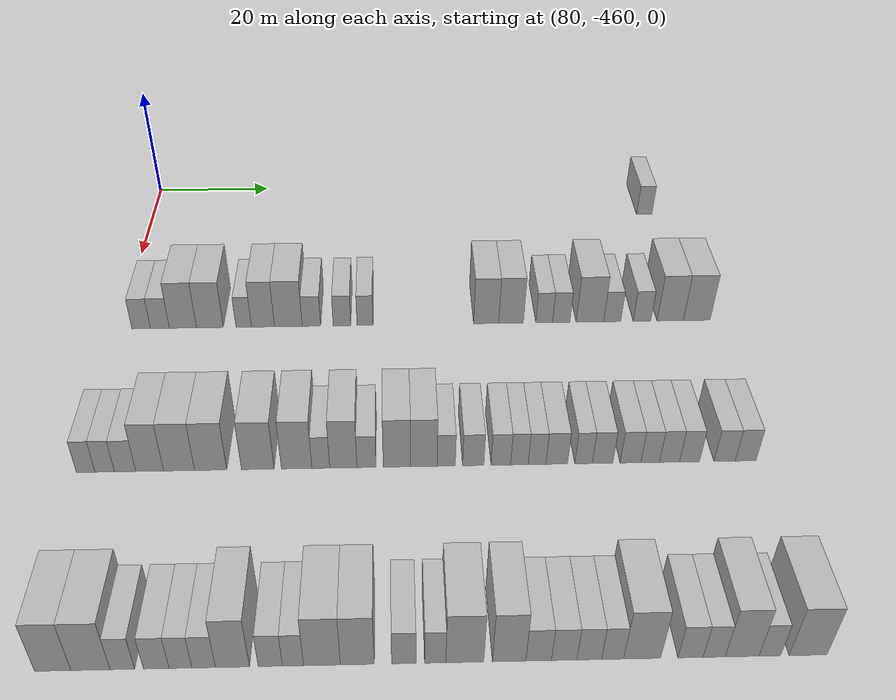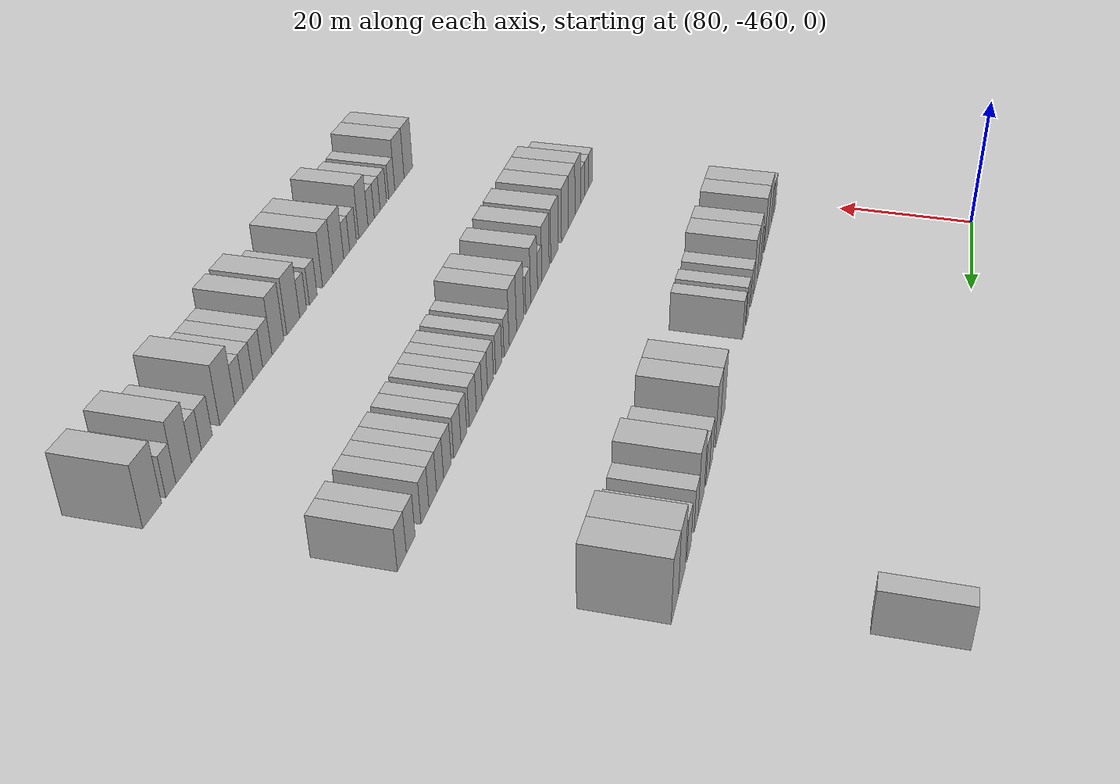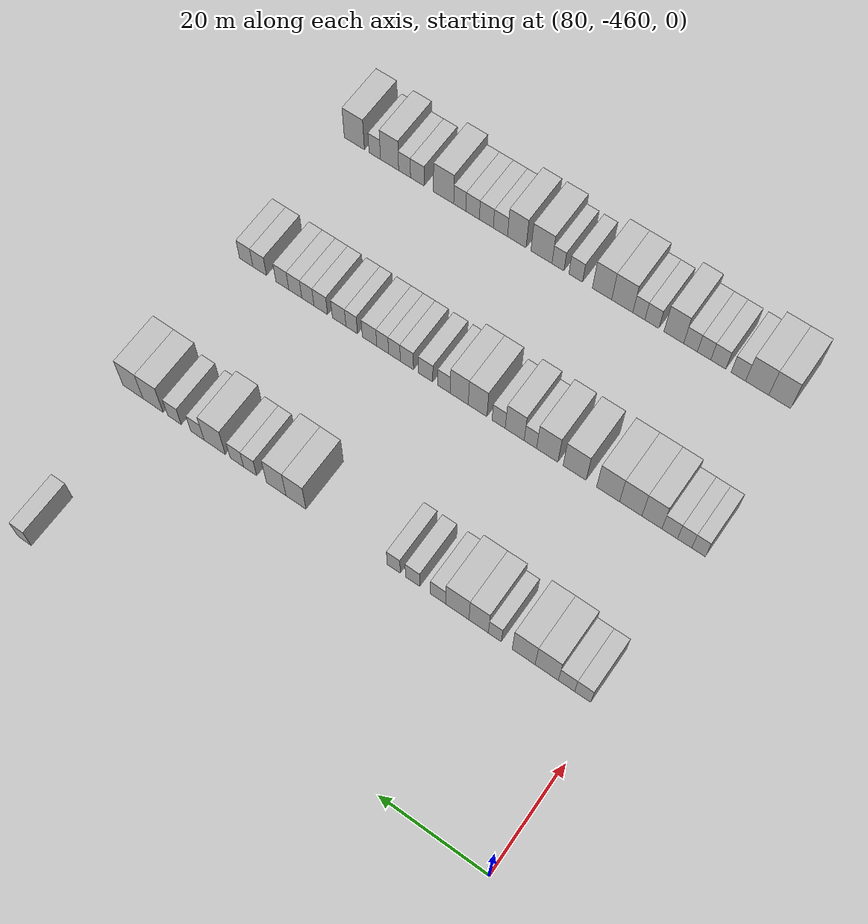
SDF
<sdf version="1.6">
 <world name="default">
  <model name="building_477">
   <static>1</static>
   <pose>85.0000 -370.8636 0 0.000000 0.000000 0.000000</pose>
   <link name="link">
    <pose>0 0 3.00 0 0 0</pose>
    <collision name="collision"><geometry><box><size>10.0000 2.7936 6.0000</size></box></geometry></collision>
    <visual name="visual">
     <cast_shadows>0</cast_shadows>
     <geometry><box><size>10.0000 2.7936 6.0000</size></box></geometry>
     <material>
      <script>
       <uri>model://HANNAS_wall/materials/scripts</uri>
       <uri>model://HANNAS_wall/materials/textures</uri>
       <name>vrc/HANNAS_wall</name>
      </script>
     </material>
    </visual>
   </link>
  </model>
  <model name="building_682">
   <static>1</static>
   <pose>115.0000 -456.5471 0 0.000000 0.000000 0.000000</pose>
   <link name="link">
    <pose>0 0 3.00 0 0 0</pose>
    <collision name="collision"><geometry><box><size>10.0000 2.9058 6.0000</size></box></geometry></collision>
    <visual name="visual">
     <cast_shadows>0</cast_shadows>
     <geometry><box><size>10.0000 2.9058 6.0000</size></box></geometry>
     <material>
      <script>
       <uri>model://HANNAS_wall/materials/scripts</uri>
       <uri>model://HANNAS_wall/materials/textures</uri>
       <name>vrc/HANNAS_wall</name>
      </script>
     </material>
    </visual>
   </link>
  </model>
  <model name="building_683">
   <static>1</static>
   <pose>115.0000 -453.5999 0 0.000000 0.000000 0.000000</pose>
   <link name="link">
    <pose>0 0 3.00 0 0 0</pose>
    <collision name="collision"><geometry><box><size>10.0000 2.9886 6.0000</size></box></geometry></collision>
    <visual name="visual">
     <cast_shadows>0</cast_shadows>
     <geometry><box><size>10.0000 2.9886 6.0000</size></box></geometry>
     <material>
      <script>
       <uri>model://HANNAS_wall/materials/scripts</uri>
       <uri>model://HANNAS_wall/materials/textures</uri>
       <name>vrc/HANNAS_wall</name>
      </script>
     </material>
    </visual>
   </link>
  </model>
  <model name="building_684">
   <static>1</static>
   <pose>115.0000 -449.9732 0 0.000000 0.000000 0.000000</pose>
   <link name="link">
    <pose>0 0 4.50 0 0 0</pose>
    <collision name="collision"><geometry><box><size>10.0000 4.2649 9.0000</size></box></geometry></collision>
    <visual name="visual">
     <cast_shadows>0</cast_shadows>
     <geometry><box><size>10.0000 4.2649 9.0000</size></box></geometry>
     <material>
      <script>
       <uri>model://HANNAS_wall/materials/scripts</uri>
       <uri>model://HANNAS_wall/materials/textures</uri>
       <name>vrc/HANNAS_wall</name>
      </script>
     </material>
    </visual>
   </link>
  </model>
  <model name="building_685">
   <static>1</static>
   <pose>115.0000 -445.7189 0 0.000000 0.000000 0.000000</pose>
   <link name="link">
    <pose>0 0 4.50 0 0 0</pose>
    <collision name="collision"><geometry><box><size>10.0000 4.2436 9.0000</size></box></geometry></collision>
    <visual name="visual">
     <cast_shadows>0</cast_shadows>
     <geometry><box><size>10.0000 4.2436 9.0000</size></box></geometry>
     <material>
      <script>
       <uri>model://HANNAS_wall/materials/scripts</uri>
       <uri>model://HANNAS_wall/materials/textures</uri>
       <name>vrc/HANNAS_wall</name>
      </script>
     </material>
    </visual>
   </link>
  </model>
  <model name="building_686">
   <static>1</static>
   <pose>115.0000 -440.3777 0 0.000000 0.000000 0.000000</pose>
   <link name="link">
    <pose>0 0 3.00 0 0 0</pose>
    <collision name="collision"><geometry><box><size>10.0000 2.4388 6.0000</size></box></geometry></collision>
    <visual name="visual">
     <cast_shadows>0</cast_shadows>
     <geometry><box><size>10.0000 2.4388 6.0000</size></box></geometry>
     <material>
      <script>
       <uri>model://HANNAS_wall/materials/scripts</uri>
       <uri>model://HANNAS_wall/materials/textures</uri>
       <name>vrc/HANNAS_wall</name>
      </script>
     </material>
    </visual>
   </link>
  </model>
  <model name="building_687">
   <static>1</static>
   <pose>115.0000 -437.3370 0 0.000000 0.000000 0.000000</pose>
   <link name="link">
    <pose>0 0 4.50 0 0 0</pose>
    <collision name="collision"><geometry><box><size>10.0000 3.6426 9.0000</size></box></geometry></collision>
    <visual name="visual">
     <cast_shadows>0</cast_shadows>
     <geometry><box><size>10.0000 3.6426 9.0000</size></box></geometry>
     <material>
      <script>
       <uri>model://HANNAS_wall/materials/scripts</uri>
       <uri>model://HANNAS_wall/materials/textures</uri>
       <name>vrc/HANNAS_wall</name>
      </script>
     </material>
    </visual>
   </link>
  </model>
  <model name="building_688">
   <static>1</static>
   <pose>115.0000 -433.3121 0 0.000000 0.000000 0.000000</pose>
   <link name="link">
    <pose>0 0 4.50 0 0 0</pose>
    <collision name="collision"><geometry><box><size>10.0000 4.4071 9.0000</size></box></geometry></collision>
    <visual name="visual">
     <cast_shadows>0</cast_shadows>
     <geometry><box><size>10.0000 4.4071 9.0000</size></box></geometry>
     <material>
      <script>
       <uri>model://HANNAS_wall/materials/scripts</uri>
       <uri>model://HANNAS_wall/materials/textures</uri>
       <name>vrc/HANNAS_wall</name>
      </script>
     </material>
    </visual>
   </link>
  </model>
  <model name="building_689">
   <static>1</static>
   <pose>115.0000 -429.6539 0 0.000000 0.000000 0.000000</pose>
   <link name="link">
    <pose>0 0 3.00 0 0 0</pose>
    <collision name="collision"><geometry><box><size>10.0000 2.9093 6.0000</size></box></geometry></collision>
    <visual name="visual">
     <cast_shadows>0</cast_shadows>
     <geometry><box><size>10.0000 2.9093 6.0000</size></box></geometry>
     <material>
      <script>
       <uri>model://HANNAS_wall/materials/scripts</uri>
       <uri>model://HANNAS_wall/materials/textures</uri>
       <name>vrc/HANNAS_wall</name>
      </script>
     </material>
    </visual>
   </link>
  </model>
  <model name="building_690">
   <static>1</static>
   <pose>115.0000 -424.8144 0 0.000000 0.000000 0.000000</pose>
   <link name="link">
    <pose>0 0 3.00 0 0 0</pose>
    <collision name="collision"><geometry><box><size>10.0000 2.7698 6.0000</size></box></geometry></collision>
    <visual name="visual">
     <cast_shadows>0</cast_shadows>
     <geometry><box><size>10.0000 2.7698 6.0000</size></box></geometry>
     <material>
      <script>
       <uri>model://HANNAS_wall/materials/scripts</uri>
       <uri>model://HANNAS_wall/materials/textures</uri>
       <name>vrc/HANNAS_wall</name>
      </script>
     </material>
    </visual>
   </link>
  </model>
  <model name="building_691">
   <static>1</static>
   <pose>115.0000 -421.1618 0 0.000000 0.000000 0.000000</pose>
   <link name="link">
    <pose>0 0 3.00 0 0 0</pose>
    <collision name="collision"><geometry><box><size>10.0000 2.5354 6.0000</size></box></geometry></collision>
    <visual name="visual">
     <cast_shadows>0</cast_shadows>
     <geometry><box><size>10.0000 2.5354 6.0000</size></box></geometry>
     <material>
      <script>
       <uri>model://HANNAS_wall/materials/scripts</uri>
       <uri>model://HANNAS_wall/materials/textures</uri>
       <name>vrc/HANNAS_wall</name>
      </script>
     </material>
    </visual>
   </link>
  </model>
  <model name="building_692">
   <static>1</static>
   <pose>115.0000 -401.9054 0 0.000000 0.000000 0.000000</pose>
   <link name="link">
    <pose>0 0 4.50 0 0 0</pose>
    <collision name="collision"><geometry><box><size>10.0000 3.9925 9.0000</size></box></geometry></collision>
    <visual name="visual">
     <cast_shadows>0</cast_shadows>
     <geometry><box><size>10.0000 3.9925 9.0000</size></box></geometry>
     <material>
      <script>
       <uri>model://HANNAS_wall/materials/scripts</uri>
       <uri>model://HANNAS_wall/materials/textures</uri>
       <name>vrc/HANNAS_wall</name>
      </script>
     </material>
    </visual>
   </link>
  </model>
  <model name="building_693">
   <static>1</static>
   <pose>115.0000 -397.9454 0 0.000000 0.000000 0.000000</pose>
   <link name="link">
    <pose>0 0 4.50 0 0 0</pose>
    <collision name="collision"><geometry><box><size>10.0000 3.9275 9.0000</size></box></geometry></collision>
    <visual name="visual">
     <cast_shadows>0</cast_shadows>
     <geometry><box><size>10.0000 3.9275 9.0000</size></box></geometry>
     <material>
      <script>
       <uri>model://HANNAS_wall/materials/scripts</uri>
       <uri>model://HANNAS_wall/materials/textures</uri>
       <name>vrc/HANNAS_wall</name>
      </script>
     </material>
    </visual>
   </link>
  </model>
  <model name="building_694">
   <static>1</static>
   <pose>115.0000 -392.6527 0 0.000000 0.000000 0.000000</pose>
   <link name="link">
    <pose>0 0 3.00 0 0 0</pose>
    <collision name="collision"><geometry><box><size>10.0000 2.6579 6.0000</size></box></geometry></collision>
    <visual name="visual">
     <cast_shadows>0</cast_shadows>
     <geometry><box><size>10.0000 2.6579 6.0000</size></box></geometry>
     <material>
      <script>
       <uri>model://HANNAS_wall/materials/scripts</uri>
       <uri>model://HANNAS_wall/materials/textures</uri>
       <name>vrc/HANNAS_wall</name>
      </script>
     </material>
    </visual>
   </link>
  </model>
  <model name="building_695">
   <static>1</static>
   <pose>115.0000 -389.9380 0 0.000000 0.000000 0.000000</pose>
   <link name="link">
    <pose>0 0 3.00 0 0 0</pose>
    <collision name="collision"><geometry><box><size>10.0000 2.7713 6.0000</size></box></geometry></collision>
    <visual name="visual">
     <cast_shadows>0</cast_shadows>
     <geometry><box><size>10.0000 2.7713 6.0000</size></box></geometry>
     <material>
      <script>
       <uri>model://HANNAS_wall/materials/scripts</uri>
       <uri>model://HANNAS_wall/materials/textures</uri>
       <name>vrc/HANNAS_wall</name>
      </script>
     </material>
    </visual>
   </link>
  </model>
  <model name="building_696">
   <static>1</static>
   <pose>115.0000 -385.3560 0 0.000000 0.000000 0.000000</pose>
   <link name="link">
    <pose>0 0 4.50 0 0 0</pose>
    <collision name="collision"><geometry><box><size>10.0000 4.3928 9.0000</size></box></geometry></collision>
    <visual name="visual">
     <cast_shadows>0</cast_shadows>
     <geometry><box><size>10.0000 4.3928 9.0000</size></box></geometry>
     <material>
      <script>
       <uri>model://HANNAS_wall/materials/scripts</uri>
       <uri>model://HANNAS_wall/materials/textures</uri>
       <name>vrc/HANNAS_wall</name>
      </script>
     </material>
    </visual>
   </link>
  </model>
  <model name="building_697">
   <static>1</static>
   <pose>115.0000 -381.7912 0 0.000000 0.000000 0.000000</pose>
   <link name="link">
    <pose>0 0 3.00 0 0 0</pose>
    <collision name="collision"><geometry><box><size>10.0000 2.7368 6.0000</size></box></geometry></collision>
    <visual name="visual">
     <cast_shadows>0</cast_shadows>
     <geometry><box><size>10.0000 2.7368 6.0000</size></box></geometry>
     <material>
      <script>
       <uri>model://HANNAS_wall/materials/scripts</uri>
       <uri>model://HANNAS_wall/materials/textures</uri>
       <name>vrc/HANNAS_wall</name>
      </script>
     </material>
    </visual>
   </link>
  </model>
  <model name="building_698">
   <static>1</static>
   <pose>115.0000 -377.0142 0 0.000000 0.000000 0.000000</pose>
   <link name="link">
    <pose>0 0 3.00 0 0 0</pose>
    <collision name="collision"><geometry><box><size>10.0000 2.8171 6.0000</size></box></geometry></collision>
    <visual name="visual">
     <cast_shadows>0</cast_shadows>
     <geometry><box><size>10.0000 2.8171 6.0000</size></box></geometry>
     <material>
      <script>
       <uri>model://HANNAS_wall/materials/scripts</uri>
       <uri>model://HANNAS_wall/materials/textures</uri>
       <name>vrc/HANNAS_wall</name>
      </script>
     </material>
    </visual>
   </link>
  </model>
  <model name="building_699">
   <static>1</static>
   <pose>115.0000 -372.4970 0 0.000000 0.000000 0.000000</pose>
   <link name="link">
    <pose>0 0 4.50 0 0 0</pose>
    <collision name="collision"><geometry><box><size>10.0000 4.2173 9.0000</size></box></geometry></collision>
    <visual name="visual">
     <cast_shadows>0</cast_shadows>
     <geometry><box><size>10.0000 4.2173 9.0000</size></box></geometry>
     <material>
      <script>
       <uri>model://HANNAS_wall/materials/scripts</uri>
       <uri>model://HANNAS_wall/materials/textures</uri>
       <name>vrc/HANNAS_wall</name>
      </script>
     </material>
    </visual>
   </link>
  </model>
  <model name="building_700">
   <static>1</static>
   <pose>115.0000 -368.2451 0 0.000000 0.000000 0.000000</pose>
   <link name="link">
    <pose>0 0 4.50 0 0 0</pose>
    <collision name="collision"><geometry><box><size>10.0000 4.2866 9.0000</size></box></geometry></collision>
    <visual name="visual">
     <cast_shadows>0</cast_shadows>
     <geometry><box><size>10.0000 4.2866 9.0000</size></box></geometry>
     <material>
      <script>
       <uri>model://HANNAS_wall/materials/scripts</uri>
       <uri>model://HANNAS_wall/materials/textures</uri>
       <name>vrc/HANNAS_wall</name>
      </script>
     </material>
    </visual>
   </link>
  </model>
  <model name="building_906">
   <static>1</static>
   <pose>145.0000 -458.7452 0 0.000000 0.000000 0.000000</pose>
   <link name="link">
    <pose>0 0 3.00 0 0 0</pose>
    <collision name="collision"><geometry><box><size>10.0000 2.5096 6.0000</size></box></geometry></collision>
    <visual name="visual">
     <cast_shadows>0</cast_shadows>
     <geometry><box><size>10.0000 2.5096 6.0000</size></box></geometry>
     <material>
      <script>
       <uri>model://HANNAS_wall/materials/scripts</uri>
       <uri>model://HANNAS_wall/materials/textures</uri>
       <name>vrc/HANNAS_wall</name>
      </script>
     </material>
    </visual>
   </link>
  </model>
  <model name="building_907">
   <static>1</static>
   <pose>145.0000 -456.1660 0 0.000000 0.000000 0.000000</pose>
   <link name="link">
    <pose>0 0 3.00 0 0 0</pose>
    <collision name="collision"><geometry><box><size>10.0000 2.6490 6.0000</size></box></geometry></collision>
    <visual name="visual">
     <cast_shadows>0</cast_shadows>
     <geometry><box><size>10.0000 2.6490 6.0000</size></box></geometry>
     <material>
      <script>
       <uri>model://HANNAS_wall/materials/scripts</uri>
       <uri>model://HANNAS_wall/materials/textures</uri>
       <name>vrc/HANNAS_wall</name>
      </script>
     </material>
    </visual>
   </link>
  </model>
  <model name="building_908">
   <static>1</static>
   <pose>145.0000 -453.3939 0 0.000000 0.000000 0.000000</pose>
   <link name="link">
    <pose>0 0 3.00 0 0 0</pose>
    <collision name="collision"><geometry><box><size>10.0000 2.8952 6.0000</size></box></geometry></collision>
    <visual name="visual">
     <cast_shadows>0</cast_shadows>
     <geometry><box><size>10.0000 2.8952 6.0000</size></box></geometry>
     <material>
      <script>
       <uri>model://HANNAS_wall/materials/scripts</uri>
       <uri>model://HANNAS_wall/materials/textures</uri>
       <name>vrc/HANNAS_wall</name>
      </script>
     </material>
    </visual>
   </link>
  </model>
  <model name="building_909">
   <static>1</static>
   <pose>145.0000 -450.0683 0 0.000000 0.000000 0.000000</pose>
   <link name="link">
    <pose>0 0 4.50 0 0 0</pose>
    <collision name="collision"><geometry><box><size>10.0000 3.7559 9.0000</size></box></geometry></collision>
    <visual name="visual">
     <cast_shadows>0</cast_shadows>
     <geometry><box><size>10.0000 3.7559 9.0000</size></box></geometry>
     <material>
      <script>
       <uri>model://HANNAS_wall/materials/scripts</uri>
       <uri>model://HANNAS_wall/materials/textures</uri>
       <name>vrc/HANNAS_wall</name>
      </script>
     </material>
    </visual>
   </link>
  </model>
  <model name="building_910">
   <static>1</static>
   <pose>145.0000 -446.0790 0 0.000000 0.000000 0.000000</pose>
   <link name="link">
    <pose>0 0 4.50 0 0 0</pose>
    <collision name="collision"><geometry><box><size>10.0000 4.2228 9.0000</size></box></geometry></collision>
    <visual name="visual">
     <cast_shadows>0</cast_shadows>
     <geometry><box><size>10.0000 4.2228 9.0000</size></box></geometry>
     <material>
      <script>
       <uri>model://HANNAS_wall/materials/scripts</uri>
       <uri>model://HANNAS_wall/materials/textures</uri>
       <name>vrc/HANNAS_wall</name>
      </script>
     </material>
    </visual>
   </link>
  </model>
  <model name="building_911">
   <static>1</static>
   <pose>145.0000 -441.7828 0 0.000000 0.000000 0.000000</pose>
   <link name="link">
    <pose>0 0 4.50 0 0 0</pose>
    <collision name="collision"><geometry><box><size>10.0000 4.3696 9.0000</size></box></geometry></collision>
    <visual name="visual">
     <cast_shadows>0</cast_shadows>
     <geometry><box><size>10.0000 4.3696 9.0000</size></box></geometry>
     <material>
      <script>
       <uri>model://HANNAS_wall/materials/scripts</uri>
       <uri>model://HANNAS_wall/materials/textures</uri>
       <name>vrc/HANNAS_wall</name>
      </script>
     </material>
    </visual>
   </link>
  </model>
  <model name="building_912">
   <static>1</static>
   <pose>145.0000 -435.3833 0 0.000000 0.000000 0.000000</pose>
   <link name="link">
    <pose>0 0 4.50 0 0 0</pose>
    <collision name="collision"><geometry><box><size>10.0000 4.4294 9.0000</size></box></geometry></collision>
    <visual name="visual">
     <cast_shadows>0</cast_shadows>
     <geometry><box><size>10.0000 4.4294 9.0000</size></box></geometry>
     <material>
      <script>
       <uri>model://HANNAS_wall/materials/scripts</uri>
       <uri>model://HANNAS_wall/materials/textures</uri>
       <name>vrc/HANNAS_wall</name>
      </script>
     </material>
    </visual>
   </link>
  </model>
  <model name="building_913">
   <static>1</static>
   <pose>145.0000 -430.0940 0 0.000000 0.000000 0.000000</pose>
   <link name="link">
    <pose>0 0 4.50 0 0 0</pose>
    <collision name="collision"><geometry><box><size>10.0000 4.1491 9.0000</size></box></geometry></collision>
    <visual name="visual">
     <cast_shadows>0</cast_shadows>
     <geometry><box><size>10.0000 4.1491 9.0000</size></box></geometry>
     <material>
      <script>
       <uri>model://HANNAS_wall/materials/scripts</uri>
       <uri>model://HANNAS_wall/materials/textures</uri>
       <name>vrc/HANNAS_wall</name>
      </script>
     </material>
    </visual>
   </link>
  </model>
  <model name="building_914">
   <static>1</static>
   <pose>145.0000 -426.8041 0 0.000000 0.000000 0.000000</pose>
   <link name="link">
    <pose>0 0 3.00 0 0 0</pose>
    <collision name="collision"><geometry><box><size>10.0000 2.4308 6.0000</size></box></geometry></collision>
    <visual name="visual">
     <cast_shadows>0</cast_shadows>
     <geometry><box><size>10.0000 2.4308 6.0000</size></box></geometry>
     <material>
      <script>
       <uri>model://HANNAS_wall/materials/scripts</uri>
       <uri>model://HANNAS_wall/materials/textures</uri>
       <name>vrc/HANNAS_wall</name>
      </script>
     </material>
    </visual>
   </link>
  </model>
  <model name="building_915">
   <static>1</static>
   <pose>145.0000 -423.7257 0 0.000000 0.000000 0.000000</pose>
   <link name="link">
    <pose>0 0 4.50 0 0 0</pose>
    <collision name="collision"><geometry><box><size>10.0000 3.7259 9.0000</size></box></geometry></collision>
    <visual name="visual">
     <cast_shadows>0</cast_shadows>
     <geometry><box><size>10.0000 3.7259 9.0000</size></box></geometry>
     <material>
      <script>
       <uri>model://HANNAS_wall/materials/scripts</uri>
       <uri>model://HANNAS_wall/materials/textures</uri>
       <name>vrc/HANNAS_wall</name>
      </script>
     </material>
    </visual>
   </link>
  </model>
  <model name="building_916">
   <static>1</static>
   <pose>145.0000 -420.5628 0 0.000000 0.000000 0.000000</pose>
   <link name="link">
    <pose>0 0 3.00 0 0 0</pose>
    <collision name="collision"><geometry><box><size>10.0000 2.5998 6.0000</size></box></geometry></collision>
    <visual name="visual">
     <cast_shadows>0</cast_shadows>
     <geometry><box><size>10.0000 2.5998 6.0000</size></box></geometry>
     <material>
      <script>
       <uri>model://HANNAS_wall/materials/scripts</uri>
       <uri>model://HANNAS_wall/materials/textures</uri>
       <name>vrc/HANNAS_wall</name>
      </script>
     </material>
    </visual>
   </link>
  </model>
  <model name="building_917">
   <static>1</static>
   <pose>145.0000 -416.4021 0 0.000000 0.000000 0.000000</pose>
   <link name="link">
    <pose>0 0 4.50 0 0 0</pose>
    <collision name="collision"><geometry><box><size>10.0000 3.7216 9.0000</size></box></geometry></collision>
    <visual name="visual">
     <cast_shadows>0</cast_shadows>
     <geometry><box><size>10.0000 3.7216 9.0000</size></box></geometry>
     <material>
      <script>
       <uri>model://HANNAS_wall/materials/scripts</uri>
       <uri>model://HANNAS_wall/materials/textures</uri>
       <name>vrc/HANNAS_wall</name>
      </script>
     </material>
    </visual>
   </link>
  </model>
  <model name="building_918">
   <static>1</static>
   <pose>145.0000 -412.7276 0 0.000000 0.000000 0.000000</pose>
   <link name="link">
    <pose>0 0 4.50 0 0 0</pose>
    <collision name="collision"><geometry><box><size>10.0000 3.6275 9.0000</size></box></geometry></collision>
    <visual name="visual">
     <cast_shadows>0</cast_shadows>
     <geometry><box><size>10.0000 3.6275 9.0000</size></box></geometry>
     <material>
      <script>
       <uri>model://HANNAS_wall/materials/scripts</uri>
       <uri>model://HANNAS_wall/materials/textures</uri>
       <name>vrc/HANNAS_wall</name>
      </script>
     </material>
    </visual>
   </link>
  </model>
  <model name="building_919">
   <static>1</static>
   <pose>145.0000 -409.6680 0 0.000000 0.000000 0.000000</pose>
   <link name="link">
    <pose>0 0 3.00 0 0 0</pose>
    <collision name="collision"><geometry><box><size>10.0000 2.4917 6.0000</size></box></geometry></collision>
    <visual name="visual">
     <cast_shadows>0</cast_shadows>
     <geometry><box><size>10.0000 2.4917 6.0000</size></box></geometry>
     <material>
      <script>
       <uri>model://HANNAS_wall/materials/scripts</uri>
       <uri>model://HANNAS_wall/materials/textures</uri>
       <name>vrc/HANNAS_wall</name>
      </script>
     </material>
    </visual>
   </link>
  </model>
  <model name="building_920">
   <static>1</static>
   <pose>145.0000 -405.9682 0 0.000000 0.000000 0.000000</pose>
   <link name="link">
    <pose>0 0 3.00 0 0 0</pose>
    <collision name="collision"><geometry><box><size>10.0000 2.9078 6.0000</size></box></geometry></collision>
    <visual name="visual">
     <cast_shadows>0</cast_shadows>
     <geometry><box><size>10.0000 2.9078 6.0000</size></box></geometry>
     <material>
      <script>
       <uri>model://HANNAS_wall/materials/scripts</uri>
       <uri>model://HANNAS_wall/materials/textures</uri>
       <name>vrc/HANNAS_wall</name>
      </script>
     </material>
    </visual>
   </link>
  </model>
  <model name="building_921">
   <static>1</static>
   <pose>145.0000 -402.1711 0 0.000000 0.000000 0.000000</pose>
   <link name="link">
    <pose>0 0 3.00 0 0 0</pose>
    <collision name="collision"><geometry><box><size>10.0000 2.6866 6.0000</size></box></geometry></collision>
    <visual name="visual">
     <cast_shadows>0</cast_shadows>
     <geometry><box><size>10.0000 2.6866 6.0000</size></box></geometry>
     <material>
      <script>
       <uri>model://HANNAS_wall/materials/scripts</uri>
       <uri>model://HANNAS_wall/materials/textures</uri>
       <name>vrc/HANNAS_wall</name>
      </script>
     </material>
    </visual>
   </link>
  </model>
  <model name="building_922">
   <static>1</static>
   <pose>145.0000 -399.6274 0 0.000000 0.000000 0.000000</pose>
   <link name="link">
    <pose>0 0 3.00 0 0 0</pose>
    <collision name="collision"><geometry><box><size>10.0000 2.4007 6.0000</size></box></geometry></collision>
    <visual name="visual">
     <cast_shadows>0</cast_shadows>
     <geometry><box><size>10.0000 2.4007 6.0000</size></box></geometry>
     <material>
      <script>
       <uri>model://HANNAS_wall/materials/scripts</uri>
       <uri>model://HANNAS_wall/materials/textures</uri>
       <name>vrc/HANNAS_wall</name>
      </script>
     </material>
    </visual>
   </link>
  </model>
  <model name="building_923">
   <static>1</static>
   <pose>145.0000 -397.2105 0 0.000000 0.000000 0.000000</pose>
   <link name="link">
    <pose>0 0 3.00 0 0 0</pose>
    <collision name="collision"><geometry><box><size>10.0000 2.4332 6.0000</size></box></geometry></collision>
    <visual name="visual">
     <cast_shadows>0</cast_shadows>
     <geometry><box><size>10.0000 2.4332 6.0000</size></box></geometry>
     <material>
      <script>
       <uri>model://HANNAS_wall/materials/scripts</uri>
       <uri>model://HANNAS_wall/materials/textures</uri>
       <name>vrc/HANNAS_wall</name>
      </script>
     </material>
    </visual>
   </link>
  </model>
  <model name="building_924">
   <static>1</static>
   <pose>145.0000 -394.5030 0 0.000000 0.000000 0.000000</pose>
   <link name="link">
    <pose>0 0 3.00 0 0 0</pose>
    <collision name="collision"><geometry><box><size>10.0000 2.9818 6.0000</size></box></geometry></collision>
    <visual name="visual">
     <cast_shadows>0</cast_shadows>
     <geometry><box><size>10.0000 2.9818 6.0000</size></box></geometry>
     <material>
      <script>
       <uri>model://HANNAS_wall/materials/scripts</uri>
       <uri>model://HANNAS_wall/materials/textures</uri>
       <name>vrc/HANNAS_wall</name>
      </script>
     </material>
    </visual>
   </link>
  </model>
  <model name="building_925">
   <static>1</static>
   <pose>145.0000 -390.8106 0 0.000000 0.000000 0.000000</pose>
   <link name="link">
    <pose>0 0 3.00 0 0 0</pose>
    <collision name="collision"><geometry><box><size>10.0000 2.4030 6.0000</size></box></geometry></collision>
    <visual name="visual">
     <cast_shadows>0</cast_shadows>
     <geometry><box><size>10.0000 2.4030 6.0000</size></box></geometry>
     <material>
      <script>
       <uri>model://HANNAS_wall/materials/scripts</uri>
       <uri>model://HANNAS_wall/materials/textures</uri>
       <name>vrc/HANNAS_wall</name>
      </script>
     </material>
    </visual>
   </link>
  </model>
  <model name="building_926">
   <static>1</static>
   <pose>145.0000 -388.1935 0 0.000000 0.000000 0.000000</pose>
   <link name="link">
    <pose>0 0 3.00 0 0 0</pose>
    <collision name="collision"><geometry><box><size>10.0000 2.8311 6.0000</size></box></geometry></collision>
    <visual name="visual">
     <cast_shadows>0</cast_shadows>
     <geometry><box><size>10.0000 2.8311 6.0000</size></box></geometry>
     <material>
      <script>
       <uri>model://HANNAS_wall/materials/scripts</uri>
       <uri>model://HANNAS_wall/materials/textures</uri>
       <name>vrc/HANNAS_wall</name>
      </script>
     </material>
    </visual>
   </link>
  </model>
  <model name="building_927">
   <static>1</static>
   <pose>145.0000 -384.3457 0 0.000000 0.000000 0.000000</pose>
   <link name="link">
    <pose>0 0 3.00 0 0 0</pose>
    <collision name="collision"><geometry><box><size>10.0000 2.8646 6.0000</size></box></geometry></collision>
    <visual name="visual">
     <cast_shadows>0</cast_shadows>
     <geometry><box><size>10.0000 2.8646 6.0000</size></box></geometry>
     <material>
      <script>
       <uri>model://HANNAS_wall/materials/scripts</uri>
       <uri>model://HANNAS_wall/materials/textures</uri>
       <name>vrc/HANNAS_wall</name>
      </script>
     </material>
    </visual>
   </link>
  </model>
  <model name="building_928">
   <static>1</static>
   <pose>145.0000 -381.6274 0 0.000000 0.000000 0.000000</pose>
   <link name="link">
    <pose>0 0 3.00 0 0 0</pose>
    <collision name="collision"><geometry><box><size>10.0000 2.5720 6.0000</size></box></geometry></collision>
    <visual name="visual">
     <cast_shadows>0</cast_shadows>
     <geometry><box><size>10.0000 2.5720 6.0000</size></box></geometry>
     <material>
      <script>
       <uri>model://HANNAS_wall/materials/scripts</uri>
       <uri>model://HANNAS_wall/materials/textures</uri>
       <name>vrc/HANNAS_wall</name>
      </script>
     </material>
    </visual>
   </link>
  </model>
  <model name="building_929">
   <static>1</static>
   <pose>145.0000 -378.9573 0 0.000000 0.000000 0.000000</pose>
   <link name="link">
    <pose>0 0 3.00 0 0 0</pose>
    <collision name="collision"><geometry><box><size>10.0000 2.7682 6.0000</size></box></geometry></collision>
    <visual name="visual">
     <cast_shadows>0</cast_shadows>
     <geometry><box><size>10.0000 2.7682 6.0000</size></box></geometry>
     <material>
      <script>
       <uri>model://HANNAS_wall/materials/scripts</uri>
       <uri>model://HANNAS_wall/materials/textures</uri>
       <name>vrc/HANNAS_wall</name>
      </script>
     </material>
    </visual>
   </link>
  </model>
  <model name="building_930">
   <static>1</static>
   <pose>145.0000 -376.1905 0 0.000000 0.000000 0.000000</pose>
   <link name="link">
    <pose>0 0 3.00 0 0 0</pose>
    <collision name="collision"><geometry><box><size>10.0000 2.7655 6.0000</size></box></geometry></collision>
    <visual name="visual">
     <cast_shadows>0</cast_shadows>
     <geometry><box><size>10.0000 2.7655 6.0000</size></box></geometry>
     <material>
      <script>
       <uri>model://HANNAS_wall/materials/scripts</uri>
       <uri>model://HANNAS_wall/materials/textures</uri>
       <name>vrc/HANNAS_wall</name>
      </script>
     </material>
    </visual>
   </link>
  </model>
  <model name="building_931">
   <static>1</static>
   <pose>145.0000 -371.3436 0 0.000000 0.000000 0.000000</pose>
   <link name="link">
    <pose>0 0 3.00 0 0 0</pose>
    <collision name="collision"><geometry><box><size>10.0000 2.9282 6.0000</size></box></geometry></collision>
    <visual name="visual">
     <cast_shadows>0</cast_shadows>
     <geometry><box><size>10.0000 2.9282 6.0000</size></box></geometry>
     <material>
      <script>
       <uri>model://HANNAS_wall/materials/scripts</uri>
       <uri>model://HANNAS_wall/materials/textures</uri>
       <name>vrc/HANNAS_wall</name>
      </script>
     </material>
    </visual>
   </link>
  </model>
  <model name="building_932">
   <static>1</static>
   <pose>145.0000 -368.4424 0 0.000000 0.000000 0.000000</pose>
   <link name="link">
    <pose>0 0 3.00 0 0 0</pose>
    <collision name="collision"><geometry><box><size>10.0000 2.8742 6.0000</size></box></geometry></collision>
    <visual name="visual">
     <cast_shadows>0</cast_shadows>
     <geometry><box><size>10.0000 2.8742 6.0000</size></box></geometry>
     <material>
      <script>
       <uri>model://HANNAS_wall/materials/scripts</uri>
       <uri>model://HANNAS_wall/materials/textures</uri>
       <name>vrc/HANNAS_wall</name>
      </script>
     </material>
    </visual>
   </link>
  </model>
  <model name="building_1145">
   <static>1</static>
   <pose>175.0000 -455.9385 0 0.000000 0.000000 0.000000</pose>
   <link name="link">
    <pose>0 0 4.50 0 0 0</pose>
    <collision name="collision"><geometry><box><size>10.0000 4.1231 9.0000</size></box></geometry></collision>
    <visual name="visual">
     <cast_shadows>0</cast_shadows>
     <geometry><box><size>10.0000 4.1231 9.0000</size></box></geometry>
     <material>
      <script>
       <uri>model://HANNAS_wall/materials/scripts</uri>
       <uri>model://HANNAS_wall/materials/textures</uri>
       <name>vrc/HANNAS_wall</name>
      </script>
     </material>
    </visual>
   </link>
  </model>
  <model name="building_1146">
   <static>1</static>
   <pose>175.0000 -451.6551 0 0.000000 0.000000 0.000000</pose>
   <link name="link">
    <pose>0 0 4.50 0 0 0</pose>
    <collision name="collision"><geometry><box><size>10.0000 4.4437 9.0000</size></box></geometry></collision>
    <visual name="visual">
     <cast_shadows>0</cast_shadows>
     <geometry><box><size>10.0000 4.4437 9.0000</size></box></geometry>
     <material>
      <script>
       <uri>model://HANNAS_wall/materials/scripts</uri>
       <uri>model://HANNAS_wall/materials/textures</uri>
       <name>vrc/HANNAS_wall</name>
      </script>
     </material>
    </visual>
   </link>
  </model>
  <model name="building_1147">
   <static>1</static>
   <pose>175.0000 -448.0368 0 0.000000 0.000000 0.000000</pose>
   <link name="link">
    <pose>0 0 3.00 0 0 0</pose>
    <collision name="collision"><geometry><box><size>10.0000 2.7929 6.0000</size></box></geometry></collision>
    <visual name="visual">
     <cast_shadows>0</cast_shadows>
     <geometry><box><size>10.0000 2.7929 6.0000</size></box></geometry>
     <material>
      <script>
       <uri>model://HANNAS_wall/materials/scripts</uri>
       <uri>model://HANNAS_wall/materials/textures</uri>
       <name>vrc/HANNAS_wall</name>
      </script>
     </material>
    </visual>
   </link>
  </model>
  <model name="building_1148">
   <static>1</static>
   <pose>175.0000 -444.1856 0 0.000000 0.000000 0.000000</pose>
   <link name="link">
    <pose>0 0 3.00 0 0 0</pose>
    <collision name="collision"><geometry><box><size>10.0000 2.9095 6.0000</size></box></geometry></collision>
    <visual name="visual">
     <cast_shadows>0</cast_shadows>
     <geometry><box><size>10.0000 2.9095 6.0000</size></box></geometry>
     <material>
      <script>
       <uri>model://HANNAS_wall/materials/scripts</uri>
       <uri>model://HANNAS_wall/materials/textures</uri>
       <name>vrc/HANNAS_wall</name>
      </script>
     </material>
    </visual>
   </link>
  </model>
  <model name="building_1149">
   <static>1</static>
   <pose>175.0000 -441.4268 0 0.000000 0.000000 0.000000</pose>
   <link name="link">
    <pose>0 0 3.00 0 0 0</pose>
    <collision name="collision"><geometry><box><size>10.0000 2.6079 6.0000</size></box></geometry></collision>
    <visual name="visual">
     <cast_shadows>0</cast_shadows>
     <geometry><box><size>10.0000 2.6079 6.0000</size></box></geometry>
     <material>
      <script>
       <uri>model://HANNAS_wall/materials/scripts</uri>
       <uri>model://HANNAS_wall/materials/textures</uri>
       <name>vrc/HANNAS_wall</name>
      </script>
     </material>
    </visual>
   </link>
  </model>
  <model name="building_1150">
   <static>1</static>
   <pose>175.0000 -438.7829 0 0.000000 0.000000 0.000000</pose>
   <link name="link">
    <pose>0 0 3.00 0 0 0</pose>
    <collision name="collision"><geometry><box><size>10.0000 2.6799 6.0000</size></box></geometry></collision>
    <visual name="visual">
     <cast_shadows>0</cast_shadows>
     <geometry><box><size>10.0000 2.6799 6.0000</size></box></geometry>
     <material>
      <script>
       <uri>model://HANNAS_wall/materials/scripts</uri>
       <uri>model://HANNAS_wall/materials/textures</uri>
       <name>vrc/HANNAS_wall</name>
      </script>
     </material>
    </visual>
   </link>
  </model>
  <model name="building_1151">
   <static>1</static>
   <pose>175.0000 -435.5067 0 0.000000 0.000000 0.000000</pose>
   <link name="link">
    <pose>0 0 4.50 0 0 0</pose>
    <collision name="collision"><geometry><box><size>10.0000 3.8726 9.0000</size></box></geometry></collision>
    <visual name="visual">
     <cast_shadows>0</cast_shadows>
     <geometry><box><size>10.0000 3.8726 9.0000</size></box></geometry>
     <material>
      <script>
       <uri>model://HANNAS_wall/materials/scripts</uri>
       <uri>model://HANNAS_wall/materials/textures</uri>
       <name>vrc/HANNAS_wall</name>
      </script>
     </material>
    </visual>
   </link>
  </model>
  <model name="building_1152">
   <static>1</static>
   <pose>175.0000 -431.1888 0 0.000000 0.000000 0.000000</pose>
   <link name="link">
    <pose>0 0 3.00 0 0 0</pose>
    <collision name="collision"><geometry><box><size>10.0000 2.7633 6.0000</size></box></geometry></collision>
    <visual name="visual">
     <cast_shadows>0</cast_shadows>
     <geometry><box><size>10.0000 2.7633 6.0000</size></box></geometry>
     <material>
      <script>
       <uri>model://HANNAS_wall/materials/scripts</uri>
       <uri>model://HANNAS_wall/materials/textures</uri>
       <name>vrc/HANNAS_wall</name>
      </script>
     </material>
    </visual>
   </link>
  </model>
  <model name="building_1153">
   <static>1</static>
   <pose>175.0000 -428.6023 0 0.000000 0.000000 0.000000</pose>
   <link name="link">
    <pose>0 0 3.00 0 0 0</pose>
    <collision name="collision"><geometry><box><size>10.0000 2.4097 6.0000</size></box></geometry></collision>
    <visual name="visual">
     <cast_shadows>0</cast_shadows>
     <geometry><box><size>10.0000 2.4097 6.0000</size></box></geometry>
     <material>
      <script>
       <uri>model://HANNAS_wall/materials/scripts</uri>
       <uri>model://HANNAS_wall/materials/textures</uri>
       <name>vrc/HANNAS_wall</name>
      </script>
     </material>
    </visual>
   </link>
  </model>
  <model name="building_1154">
   <static>1</static>
   <pose>175.0000 -425.2901 0 0.000000 0.000000 0.000000</pose>
   <link name="link">
    <pose>0 0 4.50 0 0 0</pose>
    <collision name="collision"><geometry><box><size>10.0000 4.2147 9.0000</size></box></geometry></collision>
    <visual name="visual">
     <cast_shadows>0</cast_shadows>
     <geometry><box><size>10.0000 4.2147 9.0000</size></box></geometry>
     <material>
      <script>
       <uri>model://HANNAS_wall/materials/scripts</uri>
       <uri>model://HANNAS_wall/materials/textures</uri>
       <name>vrc/HANNAS_wall</name>
      </script>
     </material>
    </visual>
   </link>
  </model>
  <model name="building_1155">
   <static>1</static>
   <pose>175.0000 -421.2453 0 0.000000 0.000000 0.000000</pose>
   <link name="link">
    <pose>0 0 4.50 0 0 0</pose>
    <collision name="collision"><geometry><box><size>10.0000 3.8749 9.0000</size></box></geometry></collision>
    <visual name="visual">
     <cast_shadows>0</cast_shadows>
     <geometry><box><size>10.0000 3.8749 9.0000</size></box></geometry>
     <material>
      <script>
       <uri>model://HANNAS_wall/materials/scripts</uri>
       <uri>model://HANNAS_wall/materials/textures</uri>
       <name>vrc/HANNAS_wall</name>
      </script>
     </material>
    </visual>
   </link>
  </model>
  <model name="building_1156">
   <static>1</static>
   <pose>175.0000 -415.9204 0 0.000000 0.000000 0.000000</pose>
   <link name="link">
    <pose>0 0 3.00 0 0 0</pose>
    <collision name="collision"><geometry><box><size>10.0000 2.7747 6.0000</size></box></geometry></collision>
    <visual name="visual">
     <cast_shadows>0</cast_shadows>
     <geometry><box><size>10.0000 2.7747 6.0000</size></box></geometry>
     <material>
      <script>
       <uri>model://HANNAS_wall/materials/scripts</uri>
       <uri>model://HANNAS_wall/materials/textures</uri>
       <name>vrc/HANNAS_wall</name>
      </script>
     </material>
    </visual>
   </link>
  </model>
  <model name="building_1157">
   <static>1</static>
   <pose>175.0000 -412.3164 0 0.000000 0.000000 0.000000</pose>
   <link name="link">
    <pose>0 0 3.00 0 0 0</pose>
    <collision name="collision"><geometry><box><size>10.0000 2.4334 6.0000</size></box></geometry></collision>
    <visual name="visual">
     <cast_shadows>0</cast_shadows>
     <geometry><box><size>10.0000 2.4334 6.0000</size></box></geometry>
     <material>
      <script>
       <uri>model://HANNAS_wall/materials/scripts</uri>
       <uri>model://HANNAS_wall/materials/textures</uri>
       <name>vrc/HANNAS_wall</name>
      </script>
     </material>
    </visual>
   </link>
  </model>
  <model name="building_1158">
   <static>1</static>
   <pose>175.0000 -408.9258 0 0.000000 0.000000 0.000000</pose>
   <link name="link">
    <pose>0 0 4.50 0 0 0</pose>
    <collision name="collision"><geometry><box><size>10.0000 4.3478 9.0000</size></box></geometry></collision>
    <visual name="visual">
     <cast_shadows>0</cast_shadows>
     <geometry><box><size>10.0000 4.3478 9.0000</size></box></geometry>
     <material>
      <script>
       <uri>model://HANNAS_wall/materials/scripts</uri>
       <uri>model://HANNAS_wall/materials/textures</uri>
       <name>vrc/HANNAS_wall</name>
      </script>
     </material>
    </visual>
   </link>
  </model>
  <model name="building_1159">
   <static>1</static>
   <pose>175.0000 -403.8296 0 0.000000 0.000000 0.000000</pose>
   <link name="link">
    <pose>0 0 4.50 0 0 0</pose>
    <collision name="collision"><geometry><box><size>10.0000 3.8447 9.0000</size></box></geometry></collision>
    <visual name="visual">
     <cast_shadows>0</cast_shadows>
     <geometry><box><size>10.0000 3.8447 9.0000</size></box></geometry>
     <material>
      <script>
       <uri>model://HANNAS_wall/materials/scripts</uri>
       <uri>model://HANNAS_wall/materials/textures</uri>
       <name>vrc/HANNAS_wall</name>
      </script>
     </material>
    </visual>
   </link>
  </model>
  <model name="building_1160">
   <static>1</static>
   <pose>175.0000 -400.4303 0 0.000000 0.000000 0.000000</pose>
   <link name="link">
    <pose>0 0 3.00 0 0 0</pose>
    <collision name="collision"><geometry><box><size>10.0000 2.9538 6.0000</size></box></geometry></collision>
    <visual name="visual">
     <cast_shadows>0</cast_shadows>
     <geometry><box><size>10.0000 2.9538 6.0000</size></box></geometry>
     <material>
      <script>
       <uri>model://HANNAS_wall/materials/scripts</uri>
       <uri>model://HANNAS_wall/materials/textures</uri>
       <name>vrc/HANNAS_wall</name>
      </script>
     </material>
    </visual>
   </link>
  </model>
  <model name="building_1161">
   <static>1</static>
   <pose>175.0000 -397.4880 0 0.000000 0.000000 0.000000</pose>
   <link name="link">
    <pose>0 0 3.00 0 0 0</pose>
    <collision name="collision"><geometry><box><size>10.0000 2.9309 6.0000</size></box></geometry></collision>
    <visual name="visual">
     <cast_shadows>0</cast_shadows>
     <geometry><box><size>10.0000 2.9309 6.0000</size></box></geometry>
     <material>
      <script>
       <uri>model://HANNAS_wall/materials/scripts</uri>
       <uri>model://HANNAS_wall/materials/textures</uri>
       <name>vrc/HANNAS_wall</name>
      </script>
     </material>
    </visual>
   </link>
  </model>
  <model name="building_1162">
   <static>1</static>
   <pose>175.0000 -394.6009 0 0.000000 0.000000 0.000000</pose>
   <link name="link">
    <pose>0 0 3.00 0 0 0</pose>
    <collision name="collision"><geometry><box><size>10.0000 2.8434 6.0000</size></box></geometry></collision>
    <visual name="visual">
     <cast_shadows>0</cast_shadows>
     <geometry><box><size>10.0000 2.8434 6.0000</size></box></geometry>
     <material>
      <script>
       <uri>model://HANNAS_wall/materials/scripts</uri>
       <uri>model://HANNAS_wall/materials/textures</uri>
       <name>vrc/HANNAS_wall</name>
      </script>
     </material>
    </visual>
   </link>
  </model>
  <model name="building_1163">
   <static>1</static>
   <pose>175.0000 -391.9042 0 0.000000 0.000000 0.000000</pose>
   <link name="link">
    <pose>0 0 3.00 0 0 0</pose>
    <collision name="collision"><geometry><box><size>10.0000 2.5498 6.0000</size></box></geometry></collision>
    <visual name="visual">
     <cast_shadows>0</cast_shadows>
     <geometry><box><size>10.0000 2.5498 6.0000</size></box></geometry>
     <material>
      <script>
       <uri>model://HANNAS_wall/materials/scripts</uri>
       <uri>model://HANNAS_wall/materials/textures</uri>
       <name>vrc/HANNAS_wall</name>
      </script>
     </material>
    </visual>
   </link>
  </model>
  <model name="building_1164">
   <static>1</static>
   <pose>175.0000 -388.4823 0 0.000000 0.000000 0.000000</pose>
   <link name="link">
    <pose>0 0 4.50 0 0 0</pose>
    <collision name="collision"><geometry><box><size>10.0000 4.2941 9.0000</size></box></geometry></collision>
    <visual name="visual">
     <cast_shadows>0</cast_shadows>
     <geometry><box><size>10.0000 4.2941 9.0000</size></box></geometry>
     <material>
      <script>
       <uri>model://HANNAS_wall/materials/scripts</uri>
       <uri>model://HANNAS_wall/materials/textures</uri>
       <name>vrc/HANNAS_wall</name>
      </script>
     </material>
    </visual>
   </link>
  </model>
  <model name="building_1165">
   <static>1</static>
   <pose>175.0000 -382.8754 0 0.000000 0.000000 0.000000</pose>
   <link name="link">
    <pose>0 0 3.00 0 0 0</pose>
    <collision name="collision"><geometry><box><size>10.0000 2.9196 6.0000</size></box></geometry></collision>
    <visual name="visual">
     <cast_shadows>0</cast_shadows>
     <geometry><box><size>10.0000 2.9196 6.0000</size></box></geometry>
     <material>
      <script>
       <uri>model://HANNAS_wall/materials/scripts</uri>
       <uri>model://HANNAS_wall/materials/textures</uri>
       <name>vrc/HANNAS_wall</name>
      </script>
     </material>
    </visual>
   </link>
  </model>
  <model name="building_1166">
   <static>1</static>
   <pose>175.0000 -380.1360 0 0.000000 0.000000 0.000000</pose>
   <link name="link">
    <pose>0 0 3.00 0 0 0</pose>
    <collision name="collision"><geometry><box><size>10.0000 2.5590 6.0000</size></box></geometry></collision>
    <visual name="visual">
     <cast_shadows>0</cast_shadows>
     <geometry><box><size>10.0000 2.5590 6.0000</size></box></geometry>
     <material>
      <script>
       <uri>model://HANNAS_wall/materials/scripts</uri>
       <uri>model://HANNAS_wall/materials/textures</uri>
       <name>vrc/HANNAS_wall</name>
      </script>
     </material>
    </visual>
   </link>
  </model>
  <model name="building_1167">
   <static>1</static>
   <pose>175.0000 -376.8946 0 0.000000 0.000000 0.000000</pose>
   <link name="link">
    <pose>0 0 4.50 0 0 0</pose>
    <collision name="collision"><geometry><box><size>10.0000 3.9238 9.0000</size></box></geometry></collision>
    <visual name="visual">
     <cast_shadows>0</cast_shadows>
     <geometry><box><size>10.0000 3.9238 9.0000</size></box></geometry>
     <material>
      <script>
       <uri>model://HANNAS_wall/materials/scripts</uri>
       <uri>model://HANNAS_wall/materials/textures</uri>
       <name>vrc/HANNAS_wall</name>
      </script>
     </material>
    </visual>
   </link>
  </model>
  <model name="building_1168">
   <static>1</static>
   <pose>175.0000 -373.6819 0 0.000000 0.000000 0.000000</pose>
   <link name="link">
    <pose>0 0 3.00 0 0 0</pose>
    <collision name="collision"><geometry><box><size>10.0000 2.5015 6.0000</size></box></geometry></collision>
    <visual name="visual">
     <cast_shadows>0</cast_shadows>
     <geometry><box><size>10.0000 2.5015 6.0000</size></box></geometry>
     <material>
      <script>
       <uri>model://HANNAS_wall/materials/scripts</uri>
       <uri>model://HANNAS_wall/materials/textures</uri>
       <name>vrc/HANNAS_wall</name>
      </script>
     </material>
    </visual>
   </link>
  </model>
  <model name="building_1169">
   <static>1</static>
   <pose>175.0000 -369.2287 0 0.000000 0.000000 0.000000</pose>
   <link name="link">
    <pose>0 0 4.50 0 0 0</pose>
    <collision name="collision"><geometry><box><size>10.0000 4.4049 9.0000</size></box></geometry></collision>
    <visual name="visual">
     <cast_shadows>0</cast_shadows>
     <geometry><box><size>10.0000 4.4049 9.0000</size></box></geometry>
     <material>
      <script>
       <uri>model://HANNAS_wall/materials/scripts</uri>
       <uri>model://HANNAS_wall/materials/textures</uri>
       <name>vrc/HANNAS_wall</name>
      </script>
     </material>
    </visual>
   </link>
  </model>
 </world>
</sdf>
